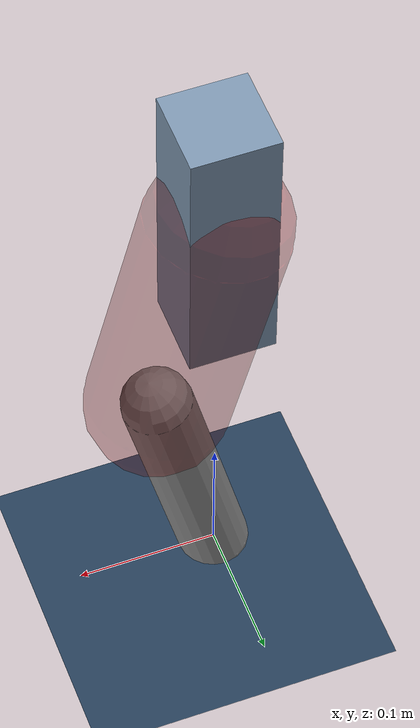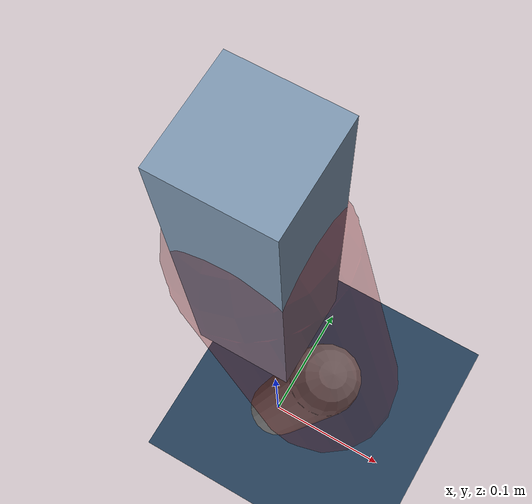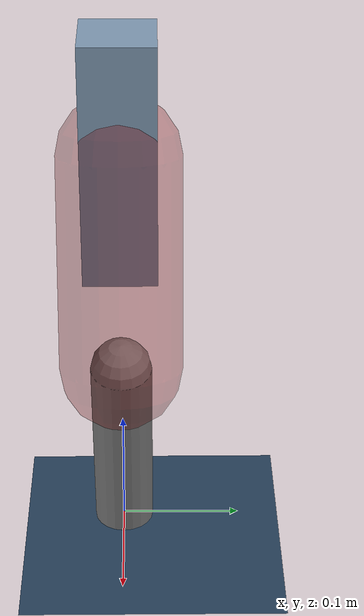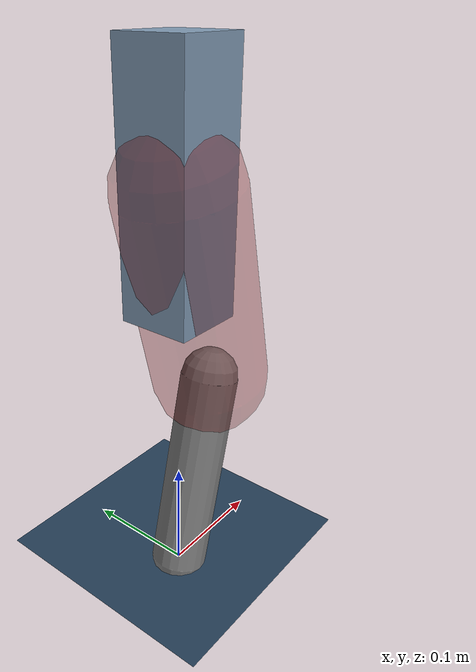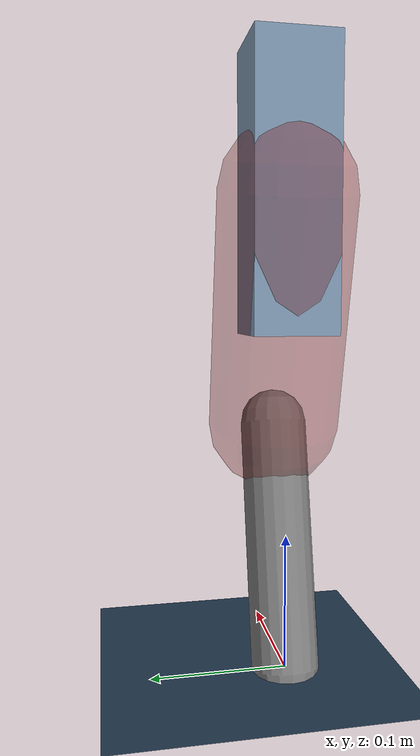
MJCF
<mujoco model="Hopper2D">
	<compiler inertiafromgeom="true" angle="radian" />
	<option timestep="0.001" integrator="implicit" cone="elliptic" solver="Newton" tolerance="1e-10" />

	<default>
		<geom contype="1" conaffinity="1" condim="3" friction="2 0.005 0.0001" solref="0.005 1" />
		<joint limited="true" damping="0.1" />
	</default>

	<asset>
		<texture name="skybox" type="skybox" builtin="gradient" rgb1=".4 .6 .8" rgb2="0 0 0" width="800" height="800" />
		<texture name="grid" type="2d" builtin="checker" rgb1=".1 .2 .3" rgb2=".2 .3 .4" width="300" height="300" mark="edge" markrgb=".2 .3 .4" />
		<material name="ground" texture="grid" texrepeat="1 1" texuniform="true" reflectance="0.1" />
		<material name="leg" rgba="0.5 0.6 0.7 1" />
	</asset>

	<worldbody>

		<geom name="floor" type="plane" size="5 5 0.25" material="ground" />

		<light directional="false" diffuse="0.8 0.8 0.8" specular="0.3 0.3 0.3" pos="0 0 2" dir="0 0 -1" />
		<light mode="targetbodycom" target="base" directional="false" diffuse="0.8 0.8 0.8" specular="0.3 0.3 0.3" pos="0 0 2" dir="0 0 -1" />

		<camera name="fixed" pos="0 -2 1" xyaxes="1 0 0 0 0 1" />
		<camera name="tracking" mode="trackcom" pos="0 -3 1" />

		<body name="root" pos="0 0 0.3475594038954223">
			<joint name="slide_x" type="slide" axis="1 0 0" range="-100 100" />
			<joint name="slide_z" type="slide" axis="0 0 1" range="0 10" />

			<body name="base" pos="0 0 0">
				<geom name="torso" type="box" size="0.03 0.03 0.1" mass="3.0149999999999997" material="leg" />

				<body name="link1" pos="0 0 0" euler="0 1.3274952893174816 0">
					<joint type="hinge" axis="0 -1 0" pos="0 0 0" name="hinge1" limited="true" range="-3.14 3.14" stiffness="0" damping="0.1" />
					<geom name="thigh" type="capsule" fromto="0 0 0 0.17422116520596806 0 0" size="0.05" rgba="0.5 0 0 0.3" mass="0.6665307964943235" />

					<body name="link2" pos="0.17422116520596806 0 0" euler="0 0.4742771771942566 0">
						<joint type="hinge" axis="0 -1 0" pos="0 0 0" name="hinge2" limited="true" range="-3.14 3.14" stiffness="0" damping="0.1" />
						<geom name="shank" type="capsule" fromto="0 0 0 0.18333823868945426 0 0" size="0.025" mass="0.3867705909515634" />

					</body>
				</body>
			</body>
		</body>
	</worldbody>

	<actuator>
		<motor name="torque1" joint="hinge1" ctrlrange="-227.55382633031556 227.55382633031556" ctrllimited="true" gear="1" />
		<motor name="torque2" joint="hinge2" ctrlrange="-15.114110794185418 15.114110794185418" ctrllimited="true" gear="1" />
	</actuator>
</mujoco>
